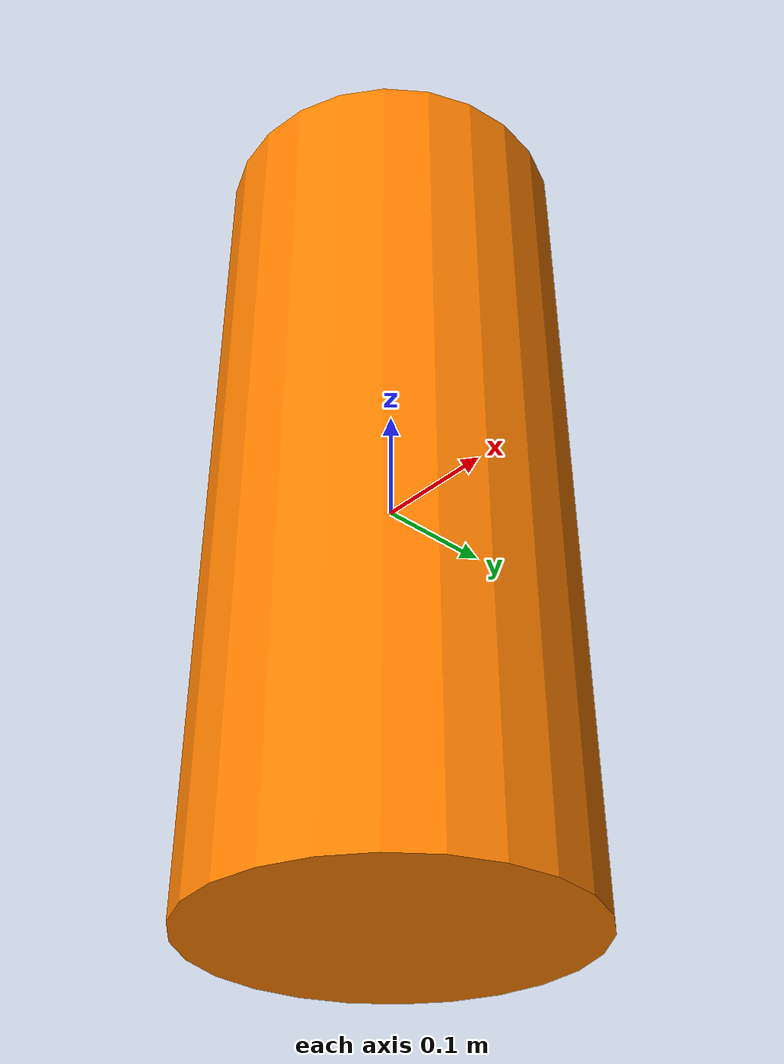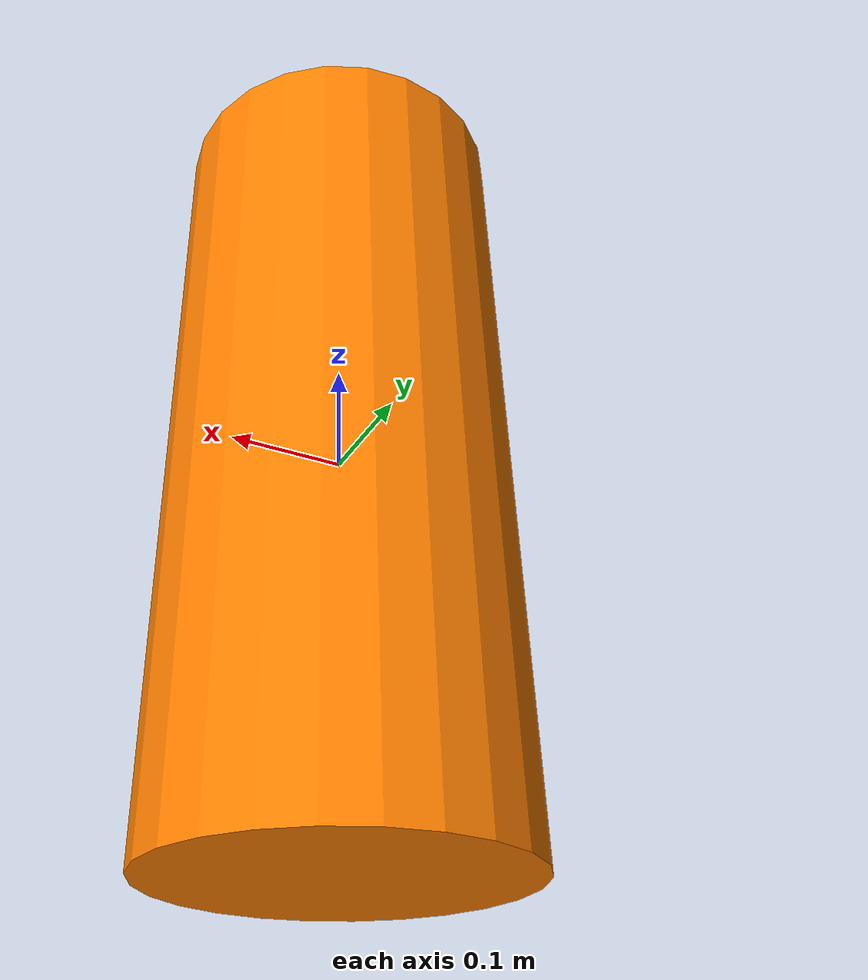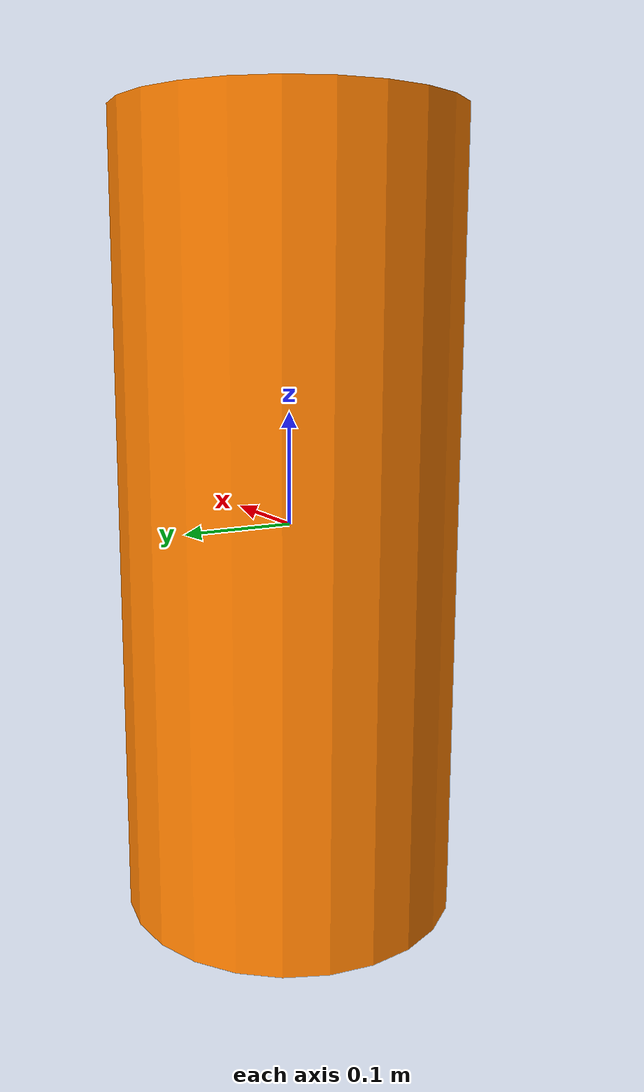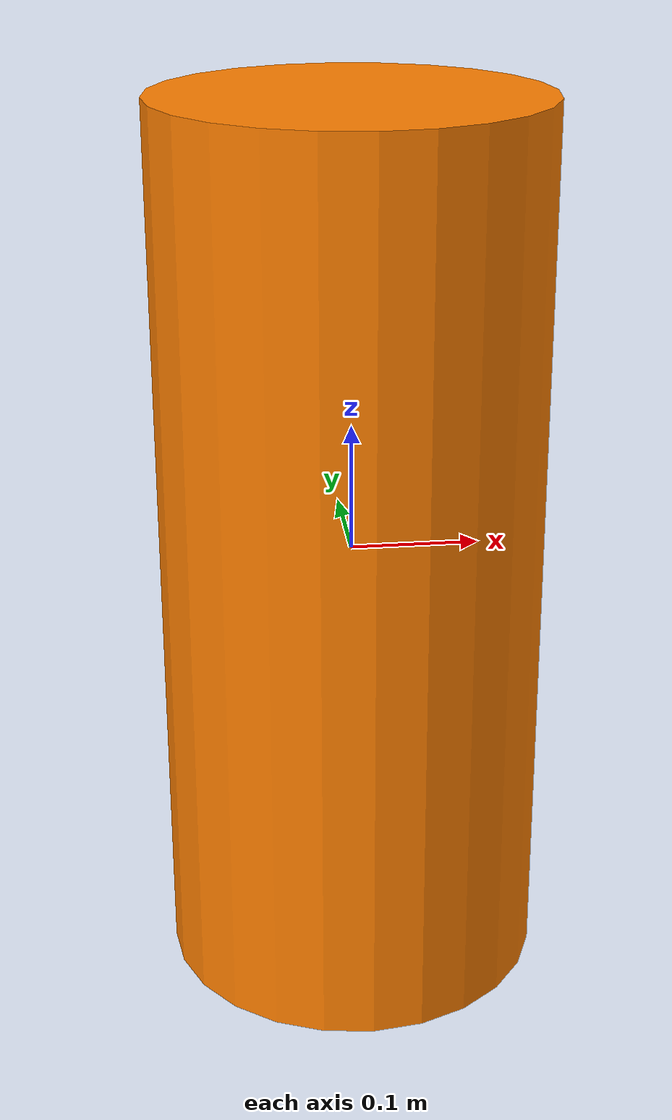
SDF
<?xml version="1.0" ?>
<sdf version="1.6">
  <model name="pylon">
    <static>true</static>
    <link name="link">
      <pose>0 0 0 0 0 0</pose>

      <inertial>
        <mass>1.0</mass>
        <inertia>
          <ixx>0.01</ixx>
          <iyy>0.01</iyy>
          <izz>0.01</izz>
          <ixy>0</ixy>
          <ixz>0</ixz>
          <iyz>0</iyz>
        </inertia>
      </inertial>

      <collision name="collision">
        <geometry>
          <cylinder>
            <radius>0.15</radius>
            <length>0.7</length>
          </cylinder>
        </geometry>
      </collision>

      <visual name="visual">
        <geometry>
          <cylinder>
            <radius>0.15</radius>
            <length>0.7</length>
          </cylinder>
        </geometry>
        <material>
          <ambient>1.0 0.5 0.0 1</ambient>
          <diffuse>1.0 0.5 0.0 1</diffuse>
        </material>
      </visual>
    </link>
  </model>
</sdf>
